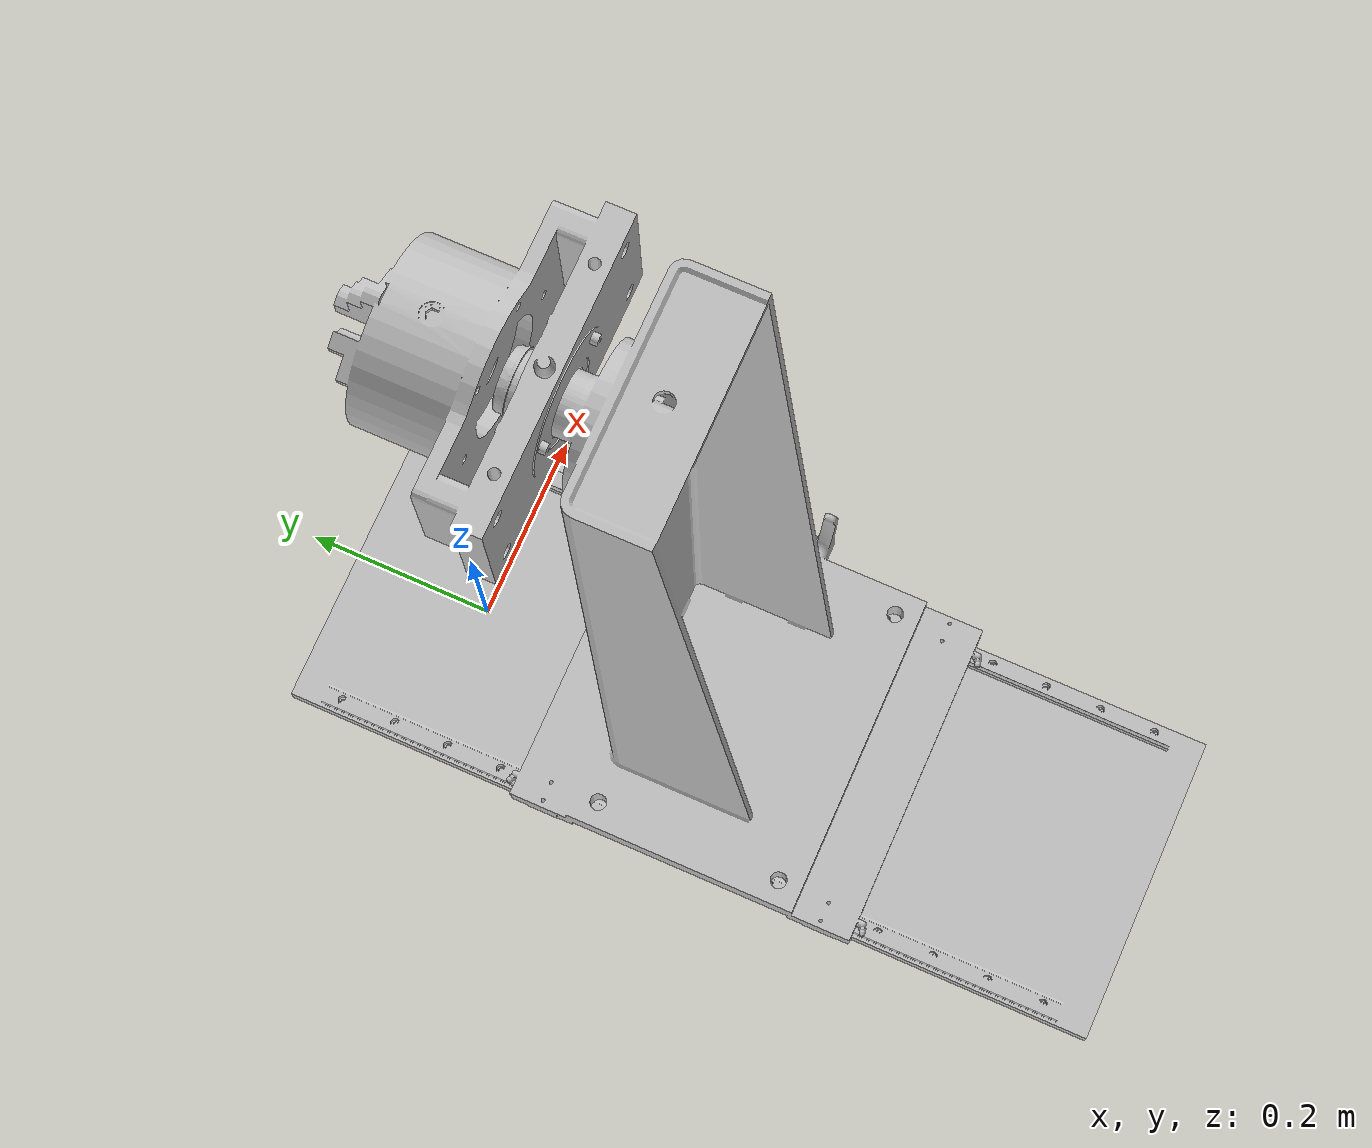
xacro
<?xml version="1.0"?>
<robot name="tailstock" xmlns:xacro="http://www.ros.org/wiki/xacro">
  <!-- Constants for robot dimensions -->
  <xacro:property name="M_PI" value="3.1415926535897931"/>

  <link name="world" />

    <joint
    name="joint_base"
    type="revolute">
    <origin
      xyz="0 0 0"
      rpy="${M_PI/2} ${-M_PI/2} 0" />
    <parent
      link="world" />
    <child
      link="base_link" />
    <axis
      xyz="1 0 0" />
    <limit
      lower="0"
      upper="0"
      effort="0"
      velocity="0" />
  </joint>

  <link
    name="base_link">
    <inertial>
      <origin
        xyz="0.010504 2.0404E-10 -1.8516E-16"
        rpy="0 0 0" />
      <mass
        value="43.494" />
      <inertia
        ixx="3.2702"
        ixy="-1.3273E-10"
        ixz="1.0184E-16"
        iyy="2.8398"
        iyz="-1.0913E-11"
        izz="0.4342" />
    </inertial>
    <visual>
      <origin
        xyz="0 0 0"
        rpy="0 0 0" />
      <geometry>
        <mesh
          filename="package://ma1400_sim/meshes/tailstock/base_link.stl" />
      </geometry>
      <material
        name="">
        <color
          rgba="0.75294 0.75294 0.75294 1" />
      </material>
    </visual>
    <collision>
      <origin
        xyz="0 0 0"
        rpy="0 0 0" />
      <geometry>
        <mesh
          filename="package://ma1400_sim/meshes/tailstock/base_link.stl" />
      </geometry>
    </collision>
  </link>

  <joint
    name="joint_prismatic"
    type="prismatic">
    <origin
      xyz="0.87075 0 0.095915"
      rpy="0 1.5708 0" />
    <parent
      link="base_link" />
    <child
      link="prismatic_link" />
    <axis
      xyz="1 0 0" />
    <!-- Position of link can be controlled here -->
    <limit
      lower="0"
      upper="0"
      effort="0"
      velocity="0" />
  </joint>

  <link
    name="prismatic_link">
    <inertial>
      <origin
        xyz="-0.16686 -0.00059778 -0.58998"
        rpy="0 0 0" />
      <mass
        value="46.132" />
      <inertia
        ixx="4.8379"
        ixy="-0.00098649"
        ixz="-0.52148"
        iyy="4.7658"
        iyz="-0.0066886"
        izz="0.74062" />
    </inertial>
    <visual>
      <origin
        xyz="0 0 0"
        rpy="0 0 0" />
      <geometry>
        <mesh
          filename="package://ma1400_sim/meshes/tailstock/prismatic_link.stl" />
      </geometry>
      <material
        name="">
        <color
          rgba="0.75294 0.75294 0.75294 1" />
      </material>
    </visual>
    <collision>
      <origin
        xyz="0 0 0"
        rpy="0 0 0" />
      <geometry>
        <mesh
          filename="package://ma1400_sim/meshes/tailstock/prismatic_link.stl" />
      </geometry>
    </collision>
  </link>

  <joint
    name="joint_revolute"
    type="revolute">
    <origin
      xyz="0.095915 0 0"
      rpy="-4.9284E-29 -4.5181E-15 6.8878E-15" />
    <parent
      link="prismatic_link" />
    <child
      link="revolute_link" />
    <axis
      xyz="1 0 0" />
    <limit
      effort="0"
      velocity="0" />
  </joint>

  <link
    name="revolute_link">
    <inertial>
      <origin
        xyz="-0.073179 1.8326E-09 -0.00010482"
        rpy="0 0 0" />
      <mass
        value="21.294" />
      <inertia
        ixx="0.11729"
        ixy="-2.2243E-09"
        ixz="-8.2318E-05"
        iyy="0.078253"
        iyz="9.6119E-10"
        izz="0.13054" />
    </inertial>
    <visual>
      <origin
        xyz="0 0 0"
        rpy="0 0 0" />
      <geometry>
        <mesh
          filename="package://ma1400_sim/meshes/tailstock/revolute_link.stl" />
      </geometry>
      <material
        name="">
        <color
          rgba="0.75294 0.75294 0.75294 1" />
      </material>
    </visual>
  </link>

</robot>
